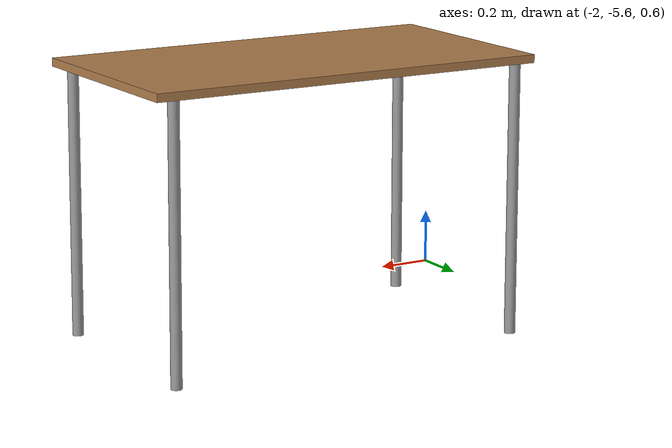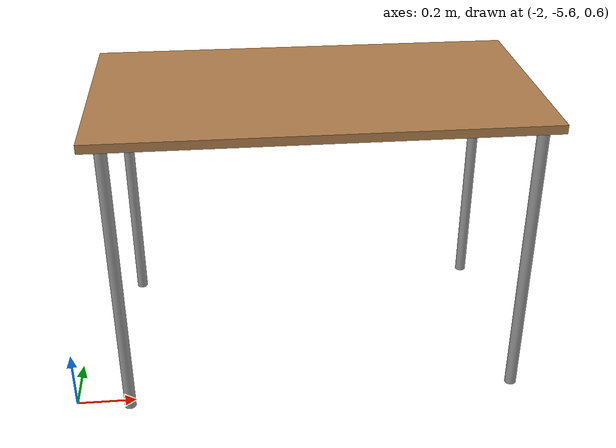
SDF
<?xml version="1.0" ?>
<sdf version="1.5">
  <model name="table">
    <pose>-1.150160 -5.170066 0.534225 0 0 3.139479</pose>
    <static>false</static>
    <link name="link">
      <collision name="surface">
        <pose>0 0 1.0 0 0 0</pose>
        <geometry>
          <box>
            <size>1.5 0.8 0.03</size>
          </box>
        </geometry>
        <surface>
          <friction>
            <ode>
              <mu>0.6</mu>
              <mu2>0.6</mu2>
            </ode>
          </friction>
        </surface>
      </collision>
      <visual name="visual1">
        <pose>0 0 1.0 0 0 0</pose>
        <geometry>
          <box>
            <size>1.5 0.8 0.03</size>
          </box>
        </geometry>
        <material>
          <script>
            <uri>file://media/materials/scripts/gazebo.material</uri>
            <name>Gazebo/Wood</name>
          </script>
        </material>
      </visual>
      <collision name="front_left_leg">
        <pose>0.68 0.38 0.5 0 0 0</pose>
        <geometry>
          <cylinder>
            <radius>0.02</radius>
            <length>1.0</length>
          </cylinder>
        </geometry>
      </collision>
      <visual name="front_left_leg">
        <pose>0.68 0.38 0.5 0 0 0</pose>
        <geometry>
          <cylinder>
            <radius>0.02</radius>
            <length>1.0</length>
          </cylinder>
        </geometry>
        <material>
          <script>
            <uri>file://media/materials/scripts/gazebo.material</uri>
            <name>Gazebo/Grey</name>
          </script>
        </material>
      </visual>
      <collision name="front_right_leg">
        <pose>0.68 -0.38 0.5 0 0 0</pose>
        <geometry>
          <cylinder>
            <radius>0.02</radius>
            <length>1.0</length>
          </cylinder>
        </geometry>
      </collision>
      <visual name="front_right_leg">
        <pose>0.68 -0.38 0.5 0 0 0</pose>
        <geometry>
          <cylinder>
            <radius>0.02</radius>
            <length>1.0</length>
          </cylinder>
        </geometry>
        <material>
          <script>
            <uri>file://media/materials/scripts/gazebo.material</uri>
            <name>Gazebo/Grey</name>
          </script>
        </material>
      </visual>
      <collision name="back_right_leg">
        <pose>-0.68 -0.38 0.5 0 0 0</pose>
        <geometry>
          <cylinder>
            <radius>0.02</radius>
            <length>1.0</length>
          </cylinder>
        </geometry>
      </collision>
      <visual name="back_right_leg">
        <pose>-0.68 -0.38 0.5 0 0 0</pose>
        <geometry>
          <cylinder>
            <radius>0.02</radius>
            <length>1.0</length>
          </cylinder>
        </geometry>
        <material>
          <script>
            <uri>file://media/materials/scripts/gazebo.material</uri>
            <name>Gazebo/Grey</name>
          </script>
        </material>
      </visual>
      <collision name="back_left_leg">
        <pose>-0.68 0.38 0.5 0 0 0</pose>
        <geometry>
          <cylinder>
            <radius>0.02</radius>
            <length>1.0</length>
          </cylinder>
        </geometry>
      </collision>
      <visual name="back_left_leg">
        <pose>-0.68 0.38 0.5 0 0 0</pose>
        <geometry>
          <cylinder>
            <radius>0.02</radius>
            <length>1.0</length>
          </cylinder>
        </geometry>
        <material>
          <script>
            <uri>file://media/materials/scripts/gazebo.material</uri>
            <name>Gazebo/Grey</name>
          </script>
        </material>
      </visual>
    </link>
  </model>
</sdf>
